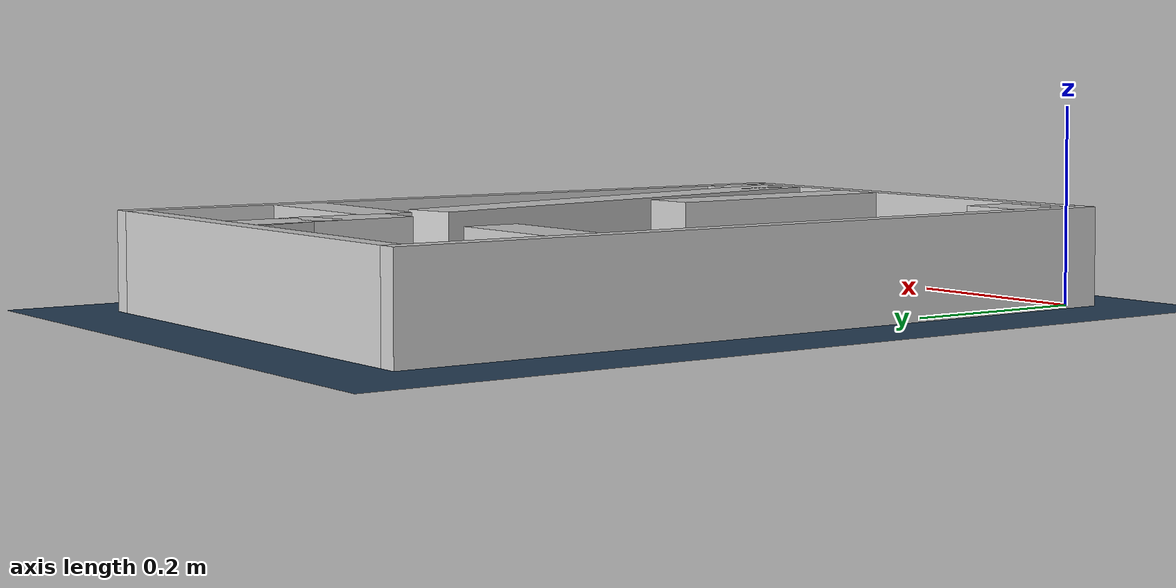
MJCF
<?xml version="1.0" ?>
<mujoco model="generated_real_template">
  <compiler angle="degree"/>
  <option timestep="0.002" integrator="implicitfast" iterations="100" cone="elliptic"/>
  <default>
    <geom density="1"/>
  </default>
  <asset>
    <texture builtin="gradient" height="3072" rgb1="0.3 0.5 0.7" rgb2="0 0 0" type="skybox" width="512"/>
    <texture builtin="checker" height="300" mark="edge" markrgb="0.8 0.8 0.8" name="groundplane" rgb1="0.2 0.3 0.4" rgb2="0.1 0.2 0.3" type="2d" width="300"/>
    <material name="groundplane" reflectance="0.2" texrepeat="5 5" texture="groundplane" texuniform="true"/>
  </asset>
  <worldbody>
    <light dir="0 0 -1" directional="true" pos="0 0 1.5"/>
    <geom name="floor" type="plane" condim="4" friction="0.5 0.005 0.001" material="groundplane" size="0 0 0.05"/>
    <body name="walls">
      <geom name="wall_boundary_left" type="box" condim="4" friction="1.0 0.005 0.0001" rgba="0.8 0.8 0.8 1" pos="-0.010000 0.387500 0.050000" euler="0 0 0.000000" size="0.010000 0.407500 0.050000"/>
      <geom name="wall_boundary_right" type="box" condim="4" friction="1.0 0.005 0.0001" rgba="0.8 0.8 0.8 1" pos="0.500000 0.387500 0.050000" euler="0 0 0.000000" size="0.010000 0.407500 0.050000"/>
      <geom name="wall_boundary_bottom" type="box" condim="4" friction="1.0 0.005 0.0001" rgba="0.8 0.8 0.8 1" pos="0.245000 -0.010000 0.050000" euler="0 0 0.000000" size="0.245000 0.010000 0.050000"/>
      <geom name="wall_boundary_top" type="box" condim="4" friction="1.0 0.005 0.0001" rgba="0.8 0.8 0.8 1" pos="0.245000 0.785000 0.050000" euler="0 0 0.000000" size="0.245000 0.010000 0.050000"/>
      <geom name="wall_inner_1_1" type="box" condim="4" friction="1.0 0.005 0.0001" rgba="0.8 0.8 0.8 1" pos="0.381113 0.276460 0.050000" euler="0 0 102.033818" size="0.282672 0.028500 0.050000"/>
      <geom name="wall_inner_1_2" type="box" condim="4" friction="1.0 0.005 0.0001" rgba="0.8 0.8 0.8 1" pos="0.284839 0.728080 0.050000" euler="0 0 102.033818" size="0.047974 0.028500 0.050000"/>
      <geom name="wall_inner_2_1" type="box" condim="4" friction="1.0 0.005 0.0001" rgba="0.8 0.8 0.8 1" pos="0.306014 0.136846 0.050000" euler="0 0 91.854641" size="0.136917 0.028500 0.050000"/>
      <geom name="wall_inner_2_2" type="box" condim="4" friction="1.0 0.005 0.0001" rgba="0.8 0.8 0.8 1" pos="0.288072 0.690930 0.050000" euler="0 0 91.854641" size="0.084114 0.028500 0.050000"/>
      <geom name="wall_inner_3_1" type="box" condim="4" friction="1.0 0.005 0.0001" rgba="0.8 0.8 0.8 1" pos="0.064458 0.605422 0.050000" euler="0 0 0.000000" size="0.064458 0.028500 0.050000"/>
      <geom name="wall_inner_3_2" type="box" condim="4" friction="1.0 0.005 0.0001" rgba="0.8 0.8 0.8 1" pos="0.401767 0.605422 0.050000" euler="0 0 0.000000" size="0.088233 0.028500 0.050000"/>
      <geom name="wall_inner_4_1" type="box" condim="4" friction="1.0 0.005 0.0001" rgba="0.8 0.8 0.8 1" pos="0.033774 0.044059 0.050000" euler="0 0 0.000000" size="0.033774 0.028500 0.050000"/>
      <geom name="wall_inner_4_2" type="box" condim="4" friction="1.0 0.005 0.0001" rgba="0.8 0.8 0.8 1" pos="0.455591 0.044059 0.050000" euler="0 0 0.000000" size="0.034409 0.028500 0.050000"/>
    </body>
  </worldbody>
</mujoco>
